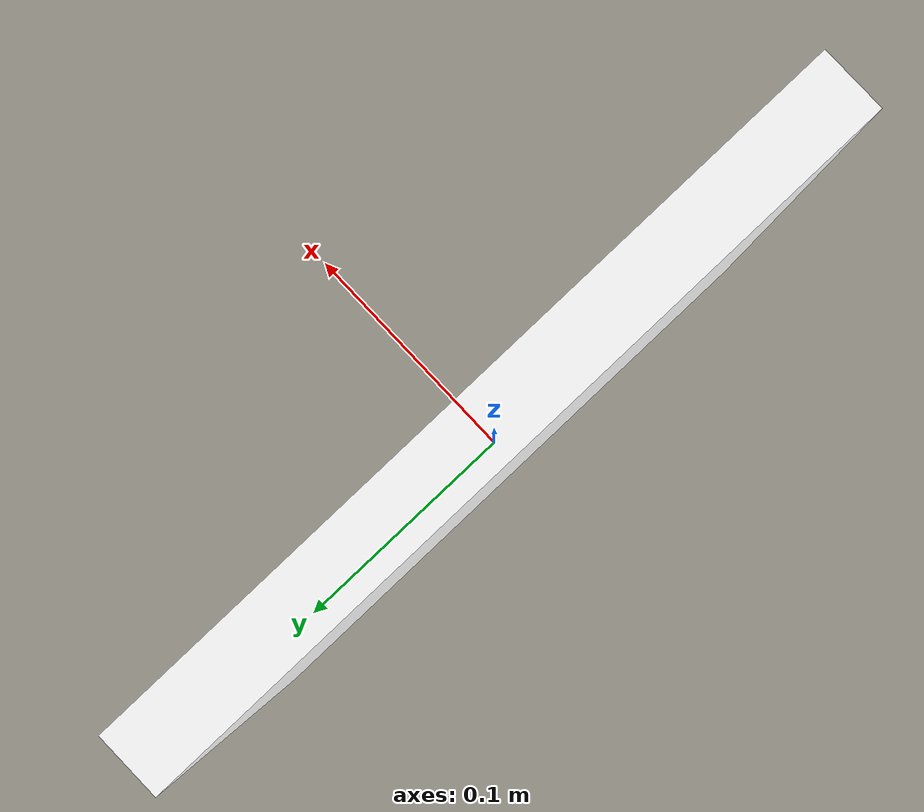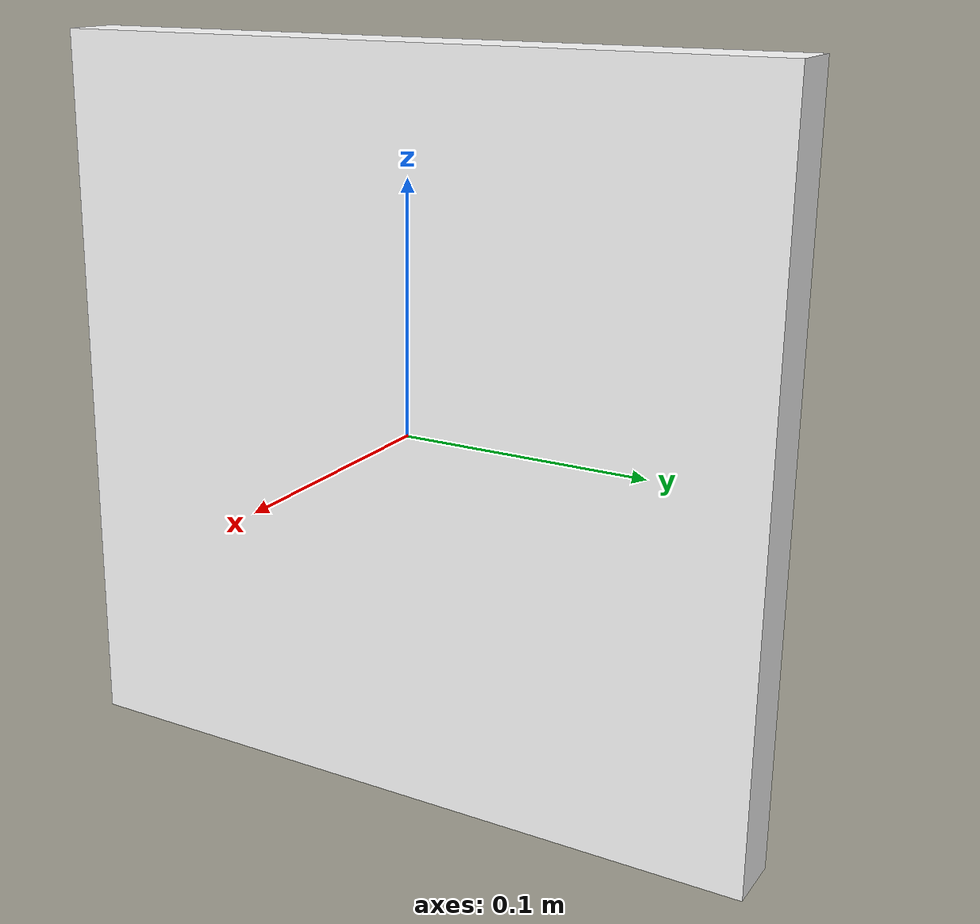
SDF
<?xml version="1.0"?>
<sdf version="1.10">
  <model name="teddy_bear">
    <static>true</static>
    <link name="link">
      <collision name="collision">
        <geometry><box><size>0.025 0.3 0.3</size></box></geometry>
      </collision>
      <visual name="visual">
        <geometry><box><size>0.025 0.3 0.3</size></box></geometry>
        <material>
          <double_sided>1</double_sided>
          <diffuse>1 1 1 1</diffuse>
          <specular>0.1 0.1 0.1 1</specular>
          <pbr>
            <metal>
              <albedo_map>materials/textures/teddybearsim.png</albedo_map>
              <metalness>0.0</metalness>
              <roughness>0.9</roughness>
            </metal>
          </pbr>
        </material>
      </visual>
    </link>
  </model>
</sdf>
